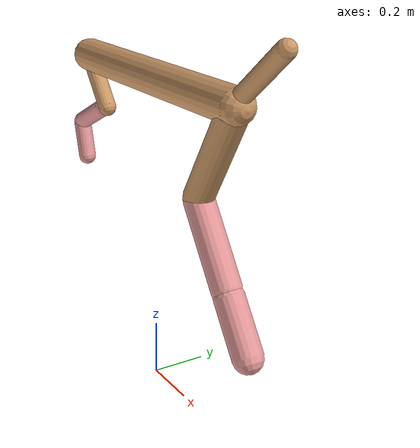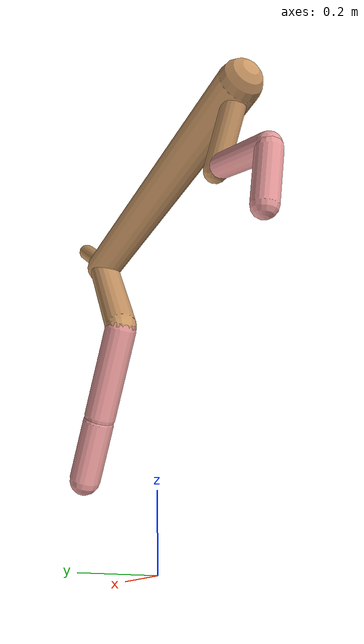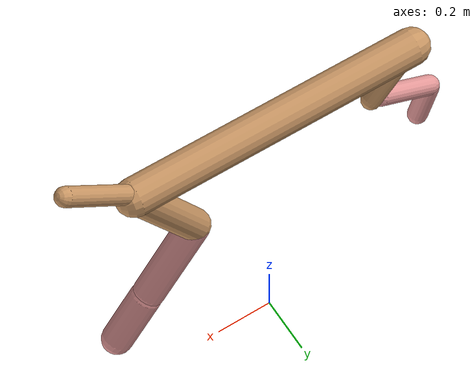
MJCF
<mujoco model="cheetah">
  <compiler angle="radian" coordinate="local" inertiafromgeom="true" settotalmass="14" />
  <default>
    <joint armature=".1" damping=".01" limited="true" solimplimit="0 .8 .03" solreflimit=".02 1" stiffness="8" />
    <geom conaffinity="0" condim="3" contype="1" friction="0.8 .1 .1" rgba="0.8 0.6 .4 1" solimp="0.0 0.8 0.01" solref="0.02 1" />
    <motor ctrllimited="true" ctrlrange="-1 1" />
  </default>
  <size nstack="300000" nuser_geom="1" />
  <option gravity="0 0 -9.81" timestep="0.01" />
  <worldbody>
    <body name="torso" pos="0.0 0.0 1.1180642406632053">
      <joint armature="0" axis="1 0 0" damping="0" limited="false" name="ignorex" pos="0 0 0" stiffness="0" type="slide" />
      <joint armature="0" axis="0 0 1" damping="0" limited="false" name="ignorez" pos="0 0 0" stiffness="0" type="slide" />
      <joint armature="0" axis="0 1 0" damping="0" limited="false" name="ignorey" pos="0 0 0" stiffness="0" type="hinge" />
      <geom fromto="-0.5 0.0 0.0 0.46810969252463175 0.0 0.0" name="torso" size="0.06019553785963235" type="capsule" />
      <geom axisangle="0 1 0 .87" name="head" pos="0.5681096925246317 0.0 0.1" size="0.03110266905308691 0.15" type="capsule" />

      <body name="bthigh" pos="-.5 0 0">
        <joint axis="0 1 0" damping="6" name="bthigh" pos="0 0 0" range="-.52 1.05" stiffness="240" type="hinge" />
        <geom axisangle="0 1 0 -3.8" name="bthigh" pos="0.0734775819030384 0.0 -0.0955208564739499" size="0.03313190842894539 0.10149999999999999" type="capsule" />
        <body name="bshin" pos="0.10695516380607678 0.0 -0.18104171294789978">
          <joint axis="0 1 0" damping="4.5" name="bshin" pos="0 0 0" range="-.785 .785" stiffness="180" type="hinge" />
          <geom axisangle="0 1 0 -2.03" name="bshin" pos="-0.0997507764050038 0.0 -0.0498753882025019" rgba="0.9 0.6 0.6 1" size="0.03313190842894539 0.105" type="capsule" />
          <body name="bfoot" pos="-0.1995015528100076 0.0 -0.0997507764050038">
            <joint axis="0 1 0" damping="3" name="bfoot" pos="0 0 0" range="-.4 .785" stiffness="120" type="hinge" />
            <geom axisangle="0 1 0 -.27" name="bfoot" pos="0.021667753813597694 0.0 -0.07005907066396588" rgba="0.9 0.6 0.6 1" size="0.03313190842894539 0.0658" type="capsule" />
            <inertial mass="10" />
          </body>
        </body>
      </body>
      <body name="fthigh" pos="0.46810969252463175 0.0 0.0">
        <joint axis="0 1 0" damping="4.5" name="fthigh" pos="0 0 0" range="-1.5 0.8" stiffness="180" type="hinge" />
        <geom axisangle="0 1 0 .52" name="fthigh" pos="-0.0993059737146057 0.0 -0.17023881208218117" size="0.05206527891329217 0.19116165691234968" type="capsule" />
        <body name="fshin" pos="-0.1986119474292114 0.0 -0.34047762416436234">
          <joint axis="0 1 0" damping="3" name="fshin" pos="0 0 0" range="-1.2 1.1" stiffness="120" type="hinge" />
          <geom axisangle="0 1 0 -.6" name="fshin" pos="0.09214006523398813 0.0 -0.1275785518624451" rgba="0.9 0.6 0.6 1" size="0.05206527891329217 0.15235440325345162" type="capsule" />
          <body name="ffoot" pos="0.18428013046797626 0.0 -0.2551571037248902">
            <joint axis="0 1 0" damping="1.5" name="ffoot" pos="0 0 0" range="-3.1 -0.3" stiffness="60" type="hinge" />
            <geom axisangle="0 1 0 -.6" name="ffoot" pos="0.06155334605196017 0.0 -0.09574964941416027" rgba="0.9 0.6 0.6 1" size="0.05206527891329217 0.10061139837492089" type="capsule" />
            <inertial mass="10" />
          </body>
        </body>
      </body>
    </body>
  </worldbody>
  <actuator>
    <motor gear="120" joint="bthigh" name="bthigh" />
    <motor gear="90" joint="bshin" name="bshin" />
    <motor gear="60" joint="bfoot" name="bfoot" />
    <motor gear="120" joint="fthigh" name="fthigh" />
    <motor gear="60" joint="fshin" name="fshin" />
    <motor gear="30" joint="ffoot" name="ffoot" />
  </actuator>
</mujoco>
